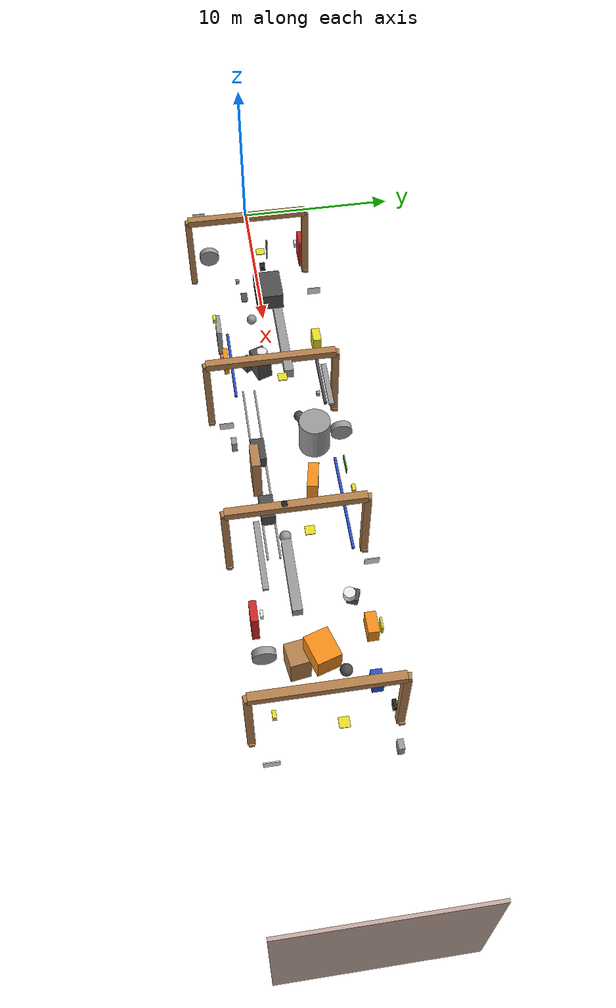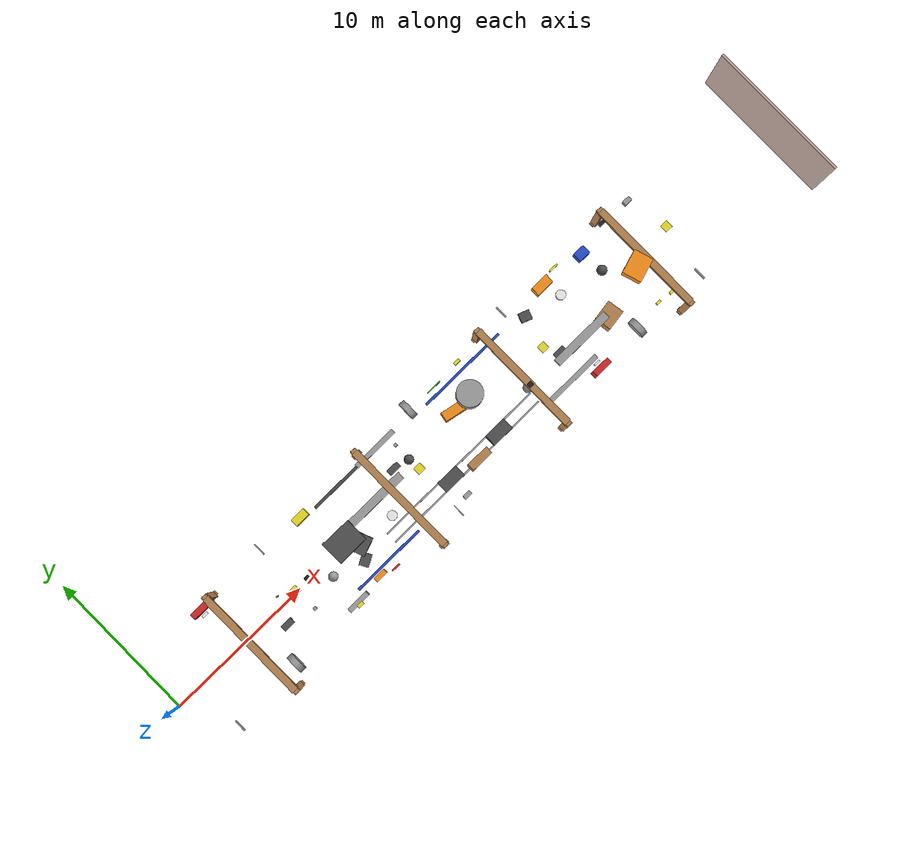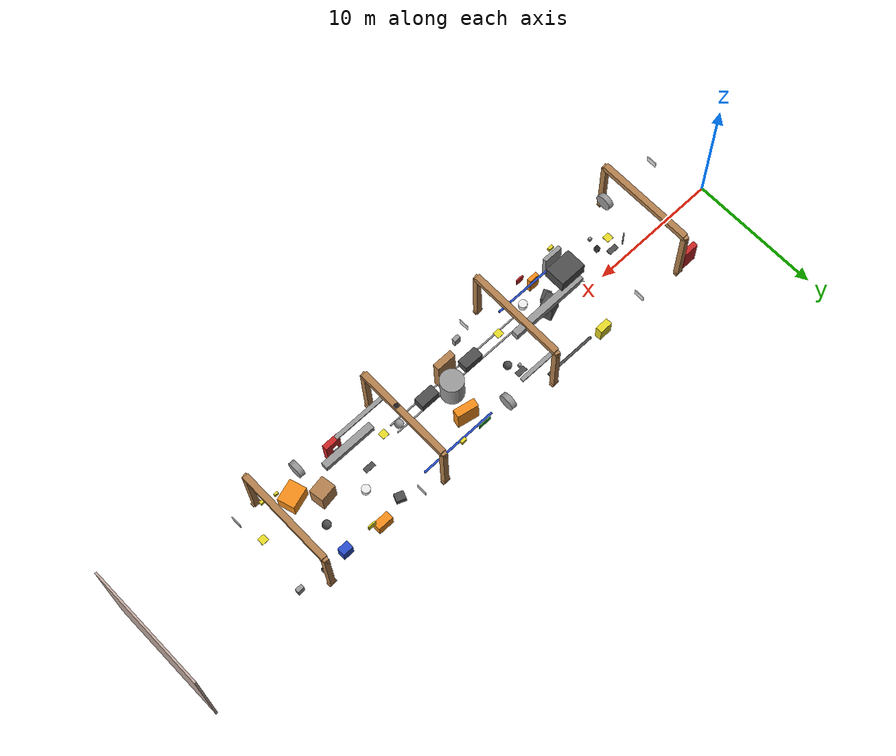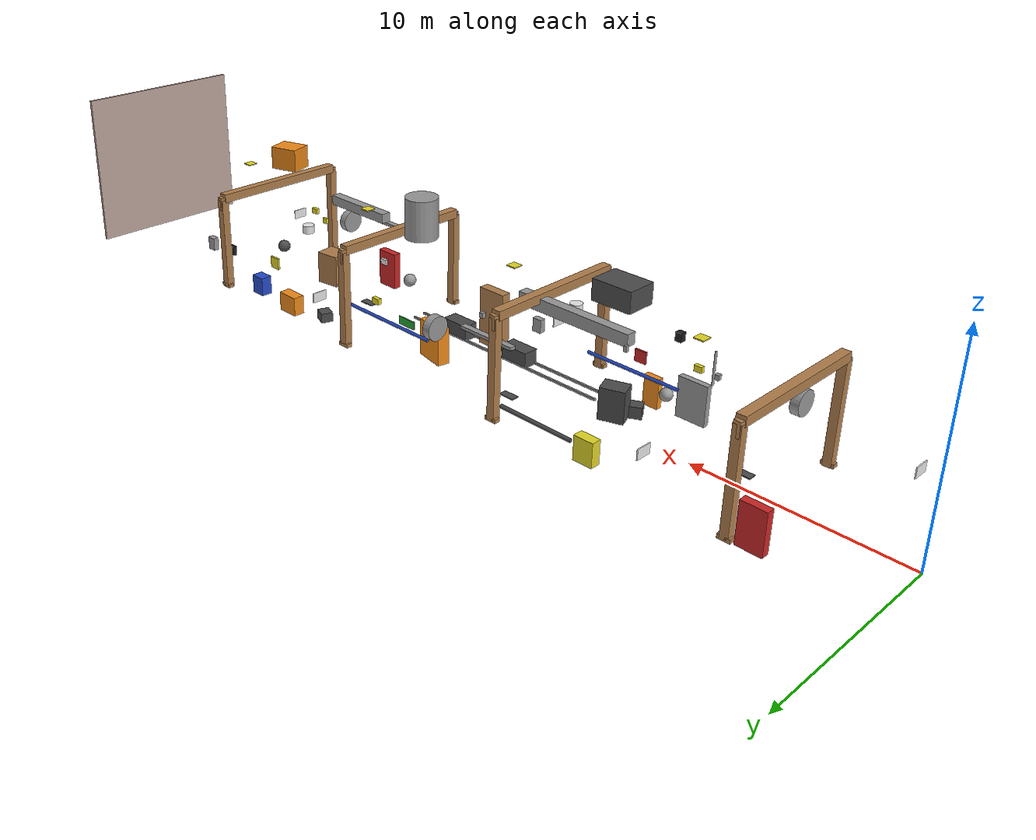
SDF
<sdf version="1.6">
 <world name="default">
  <model name="tunnel_wall">
   <pose>41.334244 0.108906 0 0 -0 0</pose>
   <link name="Wall_0">
    <collision name="Wall_0_Collision">
     <geometry><box><size>9.15 0.15 8.5</size></box></geometry>
     <pose>0 0 4.25 0 -0 0</pose>
    </collision>
    <visual name="Wall_0_Visual">
     <pose>0 0 4.25 0 -0 0</pose>
     <geometry><box><size>9.15 0.15 8.5</size></box></geometry>
     <material>
      <script><uri>file://media/materials/scripts/gazebo.material</uri><name>Gazebo/Grey</name></script>
      <ambient>0.760784 0.662745 0.627451 1</ambient>
     </material>
     <meta><layer>0</layer></meta>
    </visual>
    <pose>7.4625 0 0 0 -0 1.5708</pose>
   </link>
   <static>1</static>
  </model>
  <model name="ventilation_duct_1">
   <pose>16 0.5 4.8 0 1.57 0</pose>
   <link name="link">
    <collision name="collision"><geometry><box><size>0.6 0.5 6.0</size></box></geometry></collision>
    <visual name="visual">
     <geometry><box><size>0.6 0.5 6.0</size></box></geometry>
     <material>
      <script><uri>file://media/materials/scripts/gazebo.material</uri><name>Gazebo/Grey</name></script>
     </material>
    </visual>
   </link>
   <static>1</static>
  </model>
  <model name="ventilation_duct_2">
   <pose>32 -1.2 5.0 0 1.57 0</pose>
   <link name="link">
    <collision name="collision"><geometry><box><size>0.5 0.5 4.0</size></box></geometry></collision>
    <visual name="visual">
     <geometry><box><size>0.5 0.5 4.0</size></box></geometry>
     <material>
      <script><uri>file://media/materials/scripts/gazebo.material</uri><name>Gazebo/Grey</name></script>
     </material>
    </visual>
   </link>
   <static>1</static>
  </model>
  <model name="light_box_1">
   <pose>12 -3.2 2.5 0 0 0</pose>
   <link name="link">
    <collision name="collision"><geometry><box><size>0.4 0.2 0.3</size></box></geometry></collision>
    <visual name="visual">
     <geometry><box><size>0.4 0.2 0.3</size></box></geometry>
     <material>
      <script><uri>file://media/materials/scripts/gazebo.material</uri><name>Gazebo/Yellow</name></script>
     </material>
    </visual>
   </link>
   <static>1</static>
  </model>
  <model name="light_box_2">
   <pose>26 3.0 3.0 0 0 0</pose>
   <link name="link">
    <collision name="collision"><geometry><box><size>0.4 0.2 0.3</size></box></geometry></collision>
    <visual name="visual">
     <geometry><box><size>0.4 0.2 0.3</size></box></geometry>
     <material>
      <script><uri>file://media/materials/scripts/gazebo.material</uri><name>Gazebo/Yellow</name></script>
     </material>
    </visual>
   </link>
   <static>1</static>
  </model>
  <model name="light_box_3">
   <pose>38 -2.9 2.8 0 0 0</pose>
   <link name="link">
    <collision name="collision"><geometry><box><size>0.4 0.2 0.3</size></box></geometry></collision>
    <visual name="visual">
     <geometry><box><size>0.4 0.2 0.3</size></box></geometry>
     <material>
      <script><uri>file://media/materials/scripts/gazebo.material</uri><name>Gazebo/Yellow</name></script>
     </material>
    </visual>
   </link>
   <static>1</static>
  </model>
  <model name="cable_tray_1">
   <pose>19 2.7 3.5 0 0 0</pose>
   <link name="link">
    <collision name="collision"><geometry><box><size>3.0 0.3 0.15</size></box></geometry></collision>
    <visual name="visual">
     <geometry><box><size>3.0 0.3 0.15</size></box></geometry>
     <material>
      <script><uri>file://media/materials/scripts/gazebo.material</uri><name>Gazebo/Grey</name></script>
     </material>
    </visual>
   </link>
   <static>1</static>
  </model>
  <model name="cable_tray_2">
   <pose>30 -2.5 4.0 0 0 0</pose>
   <link name="link">
    <collision name="collision"><geometry><box><size>4.0 0.3 0.15</size></box></geometry></collision>
    <visual name="visual">
     <geometry><box><size>4.0 0.3 0.15</size></box></geometry>
     <material>
      <script><uri>file://media/materials/scripts/gazebo.material</uri><name>Gazebo/Grey</name></script>
     </material>
    </visual>
   </link>
   <static>1</static>
  </model>
  <model name="roof_structure_1">
   <pose>14 0 6.5 0 0 0</pose>
   <link name="link">
    <collision name="collision"><geometry><box><size>2.0 1.5 1.0</size></box></geometry></collision>
    <visual name="visual">
     <geometry><box><size>2.0 1.5 1.0</size></box></geometry>
     <material>
      <script><uri>file://media/materials/scripts/gazebo.material</uri><name>Gazebo/DarkGrey</name></script>
     </material>
    </visual>
   </link>
   <static>1</static>
  </model>
  <model name="roof_ventilation_shaft">
   <pose>25 1.0 7.0 0 0 0</pose>
   <link name="link">
    <collision name="collision">
     <geometry><cylinder><radius>0.8</radius><length>2.0</length></cylinder></geometry>
    </collision>
    <visual name="visual">
     <geometry><cylinder><radius>0.8</radius><length>2.0</length></cylinder></geometry>
     <material>
      <script><uri>file://media/materials/scripts/gazebo.material</uri><name>Gazebo/Grey</name></script>
     </material>
    </visual>
   </link>
   <static>1</static>
  </model>
  <model name="roof_equipment_box">
   <pose>37 -0.5 6.8 0 0 0.3</pose>
   <link name="link">
    <collision name="collision"><geometry><box><size>1.5 1.2 1.2</size></box></geometry></collision>
    <visual name="visual">
     <geometry><box><size>1.5 1.2 1.2</size></box></geometry>
     <material>
      <script><uri>file://media/materials/scripts/gazebo.material</uri><name>Gazebo/Orange</name></script>
     </material>
    </visual>
   </link>
   <static>1</static>
  </model>
  <model name="hanging_chain_1">
   <pose>9 0.5 5.0 0 0 0</pose>
   <link name="link">
    <collision name="collision">
     <geometry><cylinder><radius>0.05</radius><length>1.5</length></cylinder></geometry>
    </collision>
    <visual name="visual">
     <geometry><cylinder><radius>0.05</radius><length>1.5</length></cylinder></geometry>
     <material>
      <script><uri>file://media/materials/scripts/gazebo.material</uri><name>Gazebo/Grey</name></script>
     </material>
    </visual>
   </link>
   <static>1</static>
  </model>
  <model name="hanging_light_1">
   <pose>17 -0.8 4.5 0 0 0</pose>
   <link name="link">
    <collision name="collision">
     <geometry><cylinder><radius>0.3</radius><length>0.4</length></cylinder></geometry>
    </collision>
    <visual name="visual">
     <geometry><cylinder><radius>0.3</radius><length>0.4</length></cylinder></geometry>
     <material>
      <script><uri>file://media/materials/scripts/gazebo.material</uri><name>Gazebo/White</name></script>
     </material>
    </visual>
   </link>
   <static>1</static>
  </model>
  <model name="hanging_light_2">
   <pose>33 1.5 4.3 0 0 0</pose>
   <link name="link">
    <collision name="collision">
     <geometry><cylinder><radius>0.3</radius><length>0.4</length></cylinder></geometry>
    </collision>
    <visual name="visual">
     <geometry><cylinder><radius>0.3</radius><length>0.4</length></cylinder></geometry>
     <material>
      <script><uri>file://media/materials/scripts/gazebo.material</uri><name>Gazebo/White</name></script>
     </material>
    </visual>
   </link>
   <static>1</static>
  </model>
  <model name="warning_sign_1">
   <pose>15 -3.1 2.0 0 0 0</pose>
   <link name="link">
    <collision name="collision"><geometry><box><size>0.6 0.1 0.6</size></box></geometry></collision>
    <visual name="visual">
     <geometry><box><size>0.6 0.1 0.6</size></box></geometry>
     <material>
      <script><uri>file://media/materials/scripts/gazebo.material</uri><name>Gazebo/Red</name></script>
     </material>
    </visual>
   </link>
   <static>1</static>
  </model>
  <model name="warning_sign_2">
   <pose>34 3.0 2.5 0 0 0</pose>
   <link name="link">
    <collision name="collision"><geometry><box><size>0.6 0.1 0.6</size></box></geometry></collision>
    <visual name="visual">
     <geometry><box><size>0.6 0.1 0.6</size></box></geometry>
     <material>
      <script><uri>file://media/materials/scripts/gazebo.material</uri><name>Gazebo/Yellow</name></script>
     </material>
    </visual>
   </link>
   <static>1</static>
  </model>
  <model name="electrical_box_1">
   <pose>21 -3.0 1.5 0 0 0</pose>
   <link name="link">
    <collision name="collision"><geometry><box><size>0.5 0.3 0.7</size></box></geometry></collision>
    <visual name="visual">
     <geometry><box><size>0.5 0.3 0.7</size></box></geometry>
     <material>
      <script><uri>file://media/materials/scripts/gazebo.material</uri><name>Gazebo/Grey</name></script>
     </material>
    </visual>
   </link>
   <static>1</static>
  </model>
  <model name="electrical_box_2">
   <pose>40 2.8 1.8 0 0 0</pose>
   <link name="link">
    <collision name="collision"><geometry><box><size>0.5 0.3 0.7</size></box></geometry></collision>
    <visual name="visual">
     <geometry><box><size>0.5 0.3 0.7</size></box></geometry>
     <material>
      <script><uri>file://media/materials/scripts/gazebo.material</uri><name>Gazebo/Grey</name></script>
     </material>
    </visual>
   </link>
   <static>1</static>
  </model>
  <model name="rock_debris_1">
   <pose>14 -1.5 0.3 0 0 0.5</pose>
   <link name="link">
    <collision name="collision"><geometry><box><size>0.8 0.6 0.6</size></box></geometry></collision>
    <visual name="visual">
     <geometry><box><size>0.8 0.6 0.6</size></box></geometry>
     <material>
      <script><uri>file://media/materials/scripts/gazebo.material</uri><name>Gazebo/DarkGrey</name></script>
     </material>
    </visual>
   </link>
   <static>1</static>
  </model>
  <model name="rock_debris_2">
   <pose>31 2.2 0.25 0 0 1.2</pose>
   <link name="link">
    <collision name="collision"><geometry><box><size>0.6 0.7 0.5</size></box></geometry></collision>
    <visual name="visual">
     <geometry><box><size>0.6 0.7 0.5</size></box></geometry>
     <material>
      <script><uri>file://media/materials/scripts/gazebo.material</uri><name>Gazebo/DarkGrey</name></script>
     </material>
    </visual>
   </link>
   <static>1</static>
  </model>
  <model name="narrow_passage_1">
   <pose>23 -2.0 1.5 0 0 0</pose>
   <link name="link">
    <collision name="collision"><geometry><box><size>1.5 0.5 3.0</size></box></geometry></collision>
    <visual name="visual">
     <geometry><box><size>1.5 0.5 3.0</size></box></geometry>
     <material>
      <script><uri>file://media/materials/scripts/gazebo.material</uri><name>Gazebo/Wood</name></script>
     </material>
    </visual>
   </link>
   <static>1</static>
  </model>
  <model name="sensor_mount_1">
   <pose>11 0 5.5 0 0 0</pose>
   <link name="link">
    <collision name="collision"><geometry><box><size>0.3 0.3 0.4</size></box></geometry></collision>
    <visual name="visual">
     <geometry><box><size>0.3 0.3 0.4</size></box></geometry>
     <material>
      <script><uri>file://media/materials/scripts/gazebo.material</uri><name>Gazebo/Black</name></script>
     </material>
    </visual>
   </link>
   <static>1</static>
  </model>
  <model name="sensor_mount_2">
   <pose>28 -1.0 5.2 0 0 0</pose>
   <link name="link">
    <collision name="collision"><geometry><box><size>0.3 0.3 0.4</size></box></geometry></collision>
    <visual name="visual">
     <geometry><box><size>0.3 0.3 0.4</size></box></geometry>
     <material>
      <script><uri>file://media/materials/scripts/gazebo.material</uri><name>Gazebo/Black</name></script>
     </material>
    </visual>
   </link>
   <static>1</static>
  </model>
  <model name="distance_marker_0">
   <pose>2 -3.3 2.0 0 0 1.57</pose>
   <link name="link">
    <collision name="collision"><geometry><box><size>0.8 0.05 0.5</size></box></geometry></collision>
    <visual name="visual">
     <geometry><box><size>0.8 0.05 0.5</size></box></geometry>
     <material>
      <script><uri>file://media/materials/scripts/gazebo.material</uri><name>Gazebo/White</name></script>
     </material>
    </visual>
   </link>
   <static>1</static>
  </model>
  <model name="emergency_station_1">
   <pose>5 3.2 0 0 0 0</pose>
   <link name="link">
    <collision name="collision">
     <geometry><box><size>1.2 0.4 2.0</size></box></geometry>
     <pose>0 0 1.0 0 0 0</pose>
    </collision>
    <visual name="visual">
     <pose>0 0 1.0 0 0 0</pose>
     <geometry><box><size>1.2 0.4 2.0</size></box></geometry>
     <material>
      <script><uri>file://media/materials/scripts/gazebo.material</uri><name>Gazebo/Red</name></script>
     </material>
    </visual>
   </link>
   <static>1</static>
  </model>
  <model name="first_aid_kit_1">
   <pose>5 2.8 1.5 0 0 0</pose>
   <link name="link">
    <collision name="collision"><geometry><box><size>0.4 0.15 0.3</size></box></geometry></collision>
    <visual name="visual">
     <geometry><box><size>0.4 0.15 0.3</size></box></geometry>
     <material>
      <script><uri>file://media/materials/scripts/gazebo.material</uri><name>Gazebo/White</name></script>
     </material>
    </visual>
   </link>
   <static>1</static>
  </model>
  <model name="ventilation_fan_1">
   <pose>7 -3.0 3.0 0 1.57 0</pose>
   <link name="link">
    <collision name="collision">
     <geometry><cylinder><radius>0.6</radius><length>0.4</length></cylinder></geometry>
    </collision>
    <visual name="visual">
     <geometry><cylinder><radius>0.6</radius><length>0.4</length></cylinder></geometry>
     <material>
      <script><uri>file://media/materials/scripts/gazebo.material</uri><name>Gazebo/Grey</name></script>
     </material>
    </visual>
   </link>
   <static>1</static>
  </model>
  <model name="distance_marker_10">
   <pose>10 3.3 2.0 0 0 -1.57</pose>
   <link name="link">
    <collision name="collision"><geometry><box><size>0.8 0.05 0.5</size></box></geometry></collision>
    <visual name="visual">
     <geometry><box><size>0.8 0.05 0.5</size></box></geometry>
     <material>
      <script><uri>file://media/materials/scripts/gazebo.material</uri><name>Gazebo/White</name></script>
     </material>
    </visual>
   </link>
   <static>1</static>
  </model>
  <model name="tool_rack_1">
   <pose>12 -3.0 0 0 0 0</pose>
   <link name="link">
    <collision name="collision">
     <geometry><box><size>1.5 0.3 2.0</size></box></geometry>
     <pose>0 0 1.0 0 0 0</pose>
    </collision>
    <visual name="visual">
     <pose>0 0 1.0 0 0 0</pose>
     <geometry><box><size>1.5 0.3 2.0</size></box></geometry>
     <material>
      <script><uri>file://media/materials/scripts/gazebo.material</uri><name>Gazebo/Grey</name></script>
     </material>
    </visual>
   </link>
   <static>1</static>
  </model>
  <model name="battery_charging_station">
   <pose>13 3.0 0 0 0 0</pose>
   <link name="link">
    <collision name="collision">
     <geometry><box><size>1.0 0.5 1.2</size></box></geometry>
     <pose>0 0 0.6 0 0 0</pose>
    </collision>
    <visual name="visual">
     <pose>0 0 0.6 0 0 0</pose>
     <geometry><box><size>1.0 0.5 1.2</size></box></geometry>
     <material>
      <script><uri>file://media/materials/scripts/gazebo.material</uri><name>Gazebo/Yellow</name></script>
     </material>
    </visual>
   </link>
   <static>1</static>
  </model>
  <model name="ppe_rack">
   <pose>14 -2.8 0 0 0 0</pose>
   <link name="link">
    <collision name="collision">
     <geometry><box><size>0.8 0.3 1.5</size></box></geometry>
     <pose>0 0 0.75 0 0 0</pose>
    </collision>
    <visual name="visual">
     <pose>0 0 0.75 0 0 0</pose>
     <geometry><box><size>0.8 0.3 1.5</size></box></geometry>
     <material>
      <script><uri>file://media/materials/scripts/gazebo.material</uri><name>Gazebo/Orange</name></script>
     </material>
    </visual>
   </link>
   <static>1</static>
  </model>
  <model name="compressed_air_line_1">
   <pose>15 -2.5 1.5 0 1.57 0</pose>
   <link name="link">
    <collision name="collision">
     <geometry><cylinder><radius>0.08</radius><length>5.0</length></cylinder></geometry>
    </collision>
    <visual name="visual">
     <geometry><cylinder><radius>0.08</radius><length>5.0</length></cylinder></geometry>
     <material>
      <script><uri>file://media/materials/scripts/gazebo.material</uri><name>Gazebo/Blue</name></script>
     </material>
    </visual>
   </link>
   <static>1</static>
  </model>
  <model name="water_pipe_1">
   <pose>16 2.8 0.5 0 1.57 0</pose>
   <link name="link">
    <collision name="collision">
     <geometry><cylinder><radius>0.1</radius><length>4.0</length></cylinder></geometry>
    </collision>
    <visual name="visual">
     <geometry><cylinder><radius>0.1</radius><length>4.0</length></cylinder></geometry>
     <material>
      <script><uri>file://media/materials/scripts/gazebo.material</uri><name>Gazebo/DarkGrey</name></script>
     </material>
    </visual>
   </link>
   <static>1</static>
  </model>
  <model name="distance_marker_20">
   <pose>20 -3.3 2.0 0 0 1.57</pose>
   <link name="link">
    <collision name="collision"><geometry><box><size>0.8 0.05 0.5</size></box></geometry></collision>
    <visual name="visual">
     <geometry><box><size>0.8 0.05 0.5</size></box></geometry>
     <material>
      <script><uri>file://media/materials/scripts/gazebo.material</uri><name>Gazebo/White</name></script>
     </material>
    </visual>
   </link>
   <static>1</static>
  </model>
  <model name="rail_track_left">
   <pose>22 -2.0 0.05 0 0 0</pose>
   <link name="link">
    <collision name="collision"><geometry><box><size>12.0 0.1 0.1</size></box></geometry></collision>
    <visual name="visual">
     <geometry><box><size>12.0 0.1 0.1</size></box></geometry>
     <material>
      <script><uri>file://media/materials/scripts/gazebo.material</uri><name>Gazebo/Grey</name></script>
     </material>
    </visual>
   </link>
   <static>1</static>
  </model>
  <model name="rail_track_right">
   <pose>22 -1.3 0.05 0 0 0</pose>
   <link name="link">
    <collision name="collision"><geometry><box><size>12.0 0.1 0.1</size></box></geometry></collision>
    <visual name="visual">
     <geometry><box><size>12.0 0.1 0.1</size></box></geometry>
     <material>
      <script><uri>file://media/materials/scripts/gazebo.material</uri><name>Gazebo/Grey</name></script>
     </material>
    </visual>
   </link>
   <static>1</static>
  </model>
  <model name="ore_cart_on_rails_1">
   <pose>21 -1.65 0.4 0 0 0</pose>
   <link name="link">
    <collision name="collision"><geometry><box><size>1.5 0.8 0.8</size></box></geometry></collision>
    <visual name="visual">
     <geometry><box><size>1.5 0.8 0.8</size></box></geometry>
     <material>
      <script><uri>file://media/materials/scripts/gazebo.material</uri><name>Gazebo/DarkGrey</name></script>
     </material>
    </visual>
   </link>
   <static>1</static>
  </model>
  <model name="ore_cart_on_rails_2">
   <pose>25 -1.65 0.4 0 0 0</pose>
   <link name="link">
    <collision name="collision"><geometry><box><size>1.5 0.8 0.8</size></box></geometry></collision>
    <visual name="visual">
     <geometry><box><size>1.5 0.8 0.8</size></box></geometry>
     <material>
      <script><uri>file://media/materials/scripts/gazebo.material</uri><name>Gazebo/DarkGrey</name></script>
     </material>
    </visual>
   </link>
   <static>1</static>
  </model>
  <model name="ventilation_fan_2">
   <pose>22 3.0 3.0 0 1.57 0</pose>
   <link name="link">
    <collision name="collision">
     <geometry><cylinder><radius>0.6</radius><length>0.4</length></cylinder></geometry>
    </collision>
    <visual name="visual">
     <geometry><cylinder><radius>0.6</radius><length>0.4</length></cylinder></geometry>
     <material>
      <script><uri>file://media/materials/scripts/gazebo.material</uri><name>Gazebo/Grey</name></script>
     </material>
    </visual>
   </link>
   <static>1</static>
  </model>
  <model name="direction_arrow_1">
   <pose>24 2.9 2.5 0 0 0</pose>
   <link name="link">
    <collision name="collision"><geometry><box><size>1.0 0.05 0.4</size></box></geometry></collision>
    <visual name="visual">
     <geometry><box><size>1.0 0.05 0.4</size></box></geometry>
     <material>
      <script><uri>file://media/materials/scripts/gazebo.material</uri><name>Gazebo/Green</name></script>
     </material>
    </visual>
   </link>
   <static>1</static>
  </model>
  <model name="compressed_air_line_2">
   <pose>26 2.5 1.8 0 1.57 0</pose>
   <link name="link">
    <collision name="collision">
     <geometry><cylinder><radius>0.08</radius><length>6.0</length></cylinder></geometry>
    </collision>
    <visual name="visual">
     <geometry><cylinder><radius>0.08</radius><length>6.0</length></cylinder></geometry>
     <material>
      <script><uri>file://media/materials/scripts/gazebo.material</uri><name>Gazebo/Blue</name></script>
     </material>
    </visual>
   </link>
   <static>1</static>
  </model>
  <model name="distance_marker_30">
   <pose>30 3.3 2.0 0 0 -1.57</pose>
   <link name="link">
    <collision name="collision"><geometry><box><size>0.8 0.05 0.5</size></box></geometry></collision>
    <visual name="visual">
     <geometry><box><size>0.8 0.05 0.5</size></box></geometry>
     <material>
      <script><uri>file://media/materials/scripts/gazebo.material</uri><name>Gazebo/White</name></script>
     </material>
    </visual>
   </link>
   <static>1</static>
  </model>
  <model name="emergency_station_2">
   <pose>32 -3.2 0 0 0 0</pose>
   <link name="link">
    <collision name="collision">
     <geometry><box><size>1.2 0.4 2.0</size></box></geometry>
     <pose>0 0 1.0 0 0 0</pose>
    </collision>
    <visual name="visual">
     <pose>0 0 1.0 0 0 0</pose>
     <geometry><box><size>1.2 0.4 2.0</size></box></geometry>
     <material>
      <script><uri>file://media/materials/scripts/gazebo.material</uri><name>Gazebo/Red</name></script>
     </material>
    </visual>
   </link>
   <static>1</static>
  </model>
  <model name="first_aid_kit_2">
   <pose>32 -2.8 1.5 0 0 0</pose>
   <link name="link">
    <collision name="collision"><geometry><box><size>0.4 0.15 0.3</size></box></geometry></collision>
    <visual name="visual">
     <geometry><box><size>0.4 0.15 0.3</size></box></geometry>
     <material>
      <script><uri>file://media/materials/scripts/gazebo.material</uri><name>Gazebo/White</name></script>
     </material>
    </visual>
   </link>
   <static>1</static>
  </model>
  <model name="tool_station_2">
   <pose>33 2.8 0 0 0 0</pose>
   <link name="link">
    <collision name="collision">
     <geometry><box><size>1.2 0.6 1.0</size></box></geometry>
     <pose>0 0 0.5 0 0 0</pose>
    </collision>
    <visual name="visual">
     <pose>0 0 0.5 0 0 0</pose>
     <geometry><box><size>1.2 0.6 1.0</size></box></geometry>
     <material>
      <script><uri>file://media/materials/scripts/gazebo.material</uri><name>Gazebo/Orange</name></script>
     </material>
    </visual>
   </link>
   <static>1</static>
  </model>
  <model name="ventilation_fan_3">
   <pose>35 -3.0 3.0 0 1.57 0</pose>
   <link name="link">
    <collision name="collision">
     <geometry><cylinder><radius>0.6</radius><length>0.4</length></cylinder></geometry>
    </collision>
    <visual name="visual">
     <geometry><cylinder><radius>0.6</radius><length>0.4</length></cylinder></geometry>
     <material>
      <script><uri>file://media/materials/scripts/gazebo.material</uri><name>Gazebo/Grey</name></script>
     </material>
    </visual>
   </link>
   <static>1</static>
  </model>
  <model name="water_pump_station">
   <pose>36 2.5 0 0 0 0</pose>
   <link name="link">
    <collision name="collision">
     <geometry><box><size>0.8 0.6 1.0</size></box></geometry>
     <pose>0 0 0.5 0 0 0</pose>
    </collision>
    <visual name="visual">
     <pose>0 0 0.5 0 0 0</pose>
     <geometry><box><size>0.8 0.6 1.0</size></box></geometry>
     <material>
      <script><uri>file://media/materials/scripts/gazebo.material</uri><name>Gazebo/Blue</name></script>
     </material>
    </visual>
   </link>
   <static>1</static>
  </model>
  <model name="methane_detector_1">
   <pose>37 -2.8 2.5 0 0 0</pose>
   <link name="link">
    <collision name="collision"><geometry><box><size>0.3 0.15 0.3</size></box></geometry></collision>
    <visual name="visual">
     <geometry><box><size>0.3 0.15 0.3</size></box></geometry>
     <material>
      <script><uri>file://media/materials/scripts/gazebo.material</uri><name>Gazebo/Yellow</name></script>
     </material>
    </visual>
   </link>
   <static>1</static>
  </model>
  <model name="communication_box">
   <pose>38 2.9 2.0 0 0 0</pose>
   <link name="link">
    <collision name="collision"><geometry><box><size>0.4 0.2 0.5</size></box></geometry></collision>
    <visual name="visual">
     <geometry><box><size>0.4 0.2 0.5</size></box></geometry>
     <material>
      <script><uri>file://media/materials/scripts/gazebo.material</uri><name>Gazebo/Black</name></script>
     </material>
    </visual>
   </link>
   <static>1</static>
  </model>
  <model name="distance_marker_40">
   <pose>40 -3.3 2.0 0 0 1.57</pose>
   <link name="link">
    <collision name="collision"><geometry><box><size>0.8 0.05 0.5</size></box></geometry></collision>
    <visual name="visual">
     <geometry><box><size>0.8 0.05 0.5</size></box></geometry>
     <material>
      <script><uri>file://media/materials/scripts/gazebo.material</uri><name>Gazebo/White</name></script>
     </material>
    </visual>
   </link>
   <static>1</static>
  </model>
  <model name="reflective_marker_1">
   <pose>10 0 5.8 0 0 0</pose>
   <link name="link">
    <collision name="collision"><geometry><box><size>0.5 0.5 0.05</size></box></geometry></collision>
    <visual name="visual">
     <geometry><box><size>0.5 0.5 0.05</size></box></geometry>
     <material>
      <script><uri>file://media/materials/scripts/gazebo.material</uri><name>Gazebo/Yellow</name></script>
     </material>
    </visual>
   </link>
   <static>1</static>
  </model>
  <model name="reflective_marker_2">
   <pose>20 0 5.8 0 0 0</pose>
   <link name="link">
    <collision name="collision"><geometry><box><size>0.5 0.5 0.05</size></box></geometry></collision>
    <visual name="visual">
     <geometry><box><size>0.5 0.5 0.05</size></box></geometry>
     <material>
      <script><uri>file://media/materials/scripts/gazebo.material</uri><name>Gazebo/Yellow</name></script>
     </material>
    </visual>
   </link>
   <static>1</static>
  </model>
  <model name="reflective_marker_3">
   <pose>30 0 5.8 0 0 0</pose>
   <link name="link">
    <collision name="collision"><geometry><box><size>0.5 0.5 0.05</size></box></geometry></collision>
    <visual name="visual">
     <geometry><box><size>0.5 0.5 0.05</size></box></geometry>
     <material>
      <script><uri>file://media/materials/scripts/gazebo.material</uri><name>Gazebo/Yellow</name></script>
     </material>
    </visual>
   </link>
   <static>1</static>
  </model>
  <model name="reflective_marker_4">
   <pose>40 0 5.8 0 0 0</pose>
   <link name="link">
    <collision name="collision"><geometry><box><size>0.5 0.5 0.05</size></box></geometry></collision>
    <visual name="visual">
     <geometry><box><size>0.5 0.5 0.05</size></box></geometry>
     <material>
      <script><uri>file://media/materials/scripts/gazebo.material</uri><name>Gazebo/Yellow</name></script>
     </material>
    </visual>
   </link>
   <static>1</static>
  </model>
  <model name="support_arch_1">
   <pose>6 0 0 0 0 0</pose>
   <link name="left_pillar">
    <pose>0 -4.1 2.5 0 0 0</pose>
    <collision name="collision"><geometry><box><size>0.4 0.4 5.0</size></box></geometry></collision>
    <visual name="visual">
     <geometry><box><size>0.4 0.4 5.0</size></box></geometry>
     <material>
      <script><uri>file://media/materials/scripts/gazebo.material</uri><name>Gazebo/Wood</name></script>
      <ambient>0.6 0.45 0.25 1</ambient>
     </material>
    </visual>
   </link>
   <link name="right_pillar">
    <pose>0 3.3 2.5 0 0 0</pose>
    <collision name="collision"><geometry><box><size>0.4 0.4 5.0</size></box></geometry></collision>
    <visual name="visual">
     <geometry><box><size>0.4 0.4 5.0</size></box></geometry>
     <material>
      <script><uri>file://media/materials/scripts/gazebo.material</uri><name>Gazebo/Wood</name></script>
      <ambient>0.6 0.45 0.25 1</ambient>
     </material>
    </visual>
   </link>
   <link name="top_beam">
    <pose>0 -0.4 5.1 0 0 0</pose>
    <collision name="collision"><geometry><box><size>0.45 7.4 0.45</size></box></geometry></collision>
    <visual name="visual">
     <geometry><box><size>0.45 7.4 0.45</size></box></geometry>
     <material>
      <script><uri>file://media/materials/scripts/gazebo.material</uri><name>Gazebo/Wood</name></script>
      <ambient>0.55 0.4 0.22 1</ambient>
     </material>
    </visual>
   </link>
   <link name="left_base">
    <pose>0 -4.1 0.1 0 0 0</pose>
    <collision name="collision"><geometry><box><size>0.6 0.3 0.2</size></box></geometry></collision>
    <visual name="visual">
     <geometry><box><size>0.6 0.3 0.2</size></box></geometry>
     <material>
      <script><uri>file://media/materials/scripts/gazebo.material</uri><name>Gazebo/Wood</name></script>
      <ambient>0.5 0.35 0.2 1</ambient>
     </material>
    </visual>
   </link>
   <link name="right_base">
    <pose>0 3.35 0.1 0 0 0</pose>
    <collision name="collision"><geometry><box><size>0.6 0.3 0.2</size></box></geometry></collision>
    <visual name="visual">
     <geometry><box><size>0.6 0.3 0.2</size></box></geometry>
     <material>
      <script><uri>file://media/materials/scripts/gazebo.material</uri><name>Gazebo/Wood</name></script>
      <ambient>0.5 0.35 0.2 1</ambient>
     </material>
    </visual>
   </link>
   <link name="left_brace">
    <pose>0 -4.14 4.8 0 0 0.2</pose>
    <collision name="collision"><geometry><box><size>0.35 0.25 0.7</size></box></geometry></collision>
    <visual name="visual">
     <geometry><box><size>0.35 0.25 0.7</size></box></geometry>
     <material>
      <script><uri>file://media/materials/scripts/gazebo.material</uri><name>Gazebo/Wood</name></script>
      <ambient>0.55 0.4 0.22 1</ambient>
     </material>
    </visual>
   </link>
   <link name="right_brace">
    <pose>0 3.375 4.8 0 0 -0.2</pose>
    <collision name="collision"><geometry><box><size>0.35 0.25 0.7</size></box></geometry></collision>
    <visual name="visual">
     <geometry><box><size>0.35 0.25 0.7</size></box></geometry>
     <material>
      <script><uri>file://media/materials/scripts/gazebo.material</uri><name>Gazebo/Wood</name></script>
      <ambient>0.55 0.4 0.22 1</ambient>
     </material>
    </visual>
   </link>
   <static>1</static>
  </model>
  <model name="support_arch_2">
   <pose>18 0 0 0 0 0</pose>
   <link name="left_pillar">
    <pose>0 -4.1 2.5 0 0 0</pose>
    <collision name="collision"><geometry><box><size>0.4 0.4 5.0</size></box></geometry></collision>
    <visual name="visual">
     <geometry><box><size>0.4 0.4 5.0</size></box></geometry>
     <material>
      <script><uri>file://media/materials/scripts/gazebo.material</uri><name>Gazebo/Wood</name></script>
      <ambient>0.6 0.45 0.25 1</ambient>
     </material>
    </visual>
   </link>
   <link name="right_pillar">
    <pose>0 3.3 2.5 0 0 0</pose>
    <collision name="collision"><geometry><box><size>0.4 0.4 5.0</size></box></geometry></collision>
    <visual name="visual">
     <geometry><box><size>0.4 0.4 5.0</size></box></geometry>
     <material>
      <script><uri>file://media/materials/scripts/gazebo.material</uri><name>Gazebo/Wood</name></script>
      <ambient>0.6 0.45 0.25 1</ambient>
     </material>
    </visual>
   </link>
   <link name="top_beam">
    <pose>0 -0.4 5.1 0 0 0</pose>
    <collision name="collision"><geometry><box><size>0.45 7.4 0.45</size></box></geometry></collision>
    <visual name="visual">
     <geometry><box><size>0.45 7.4 0.45</size></box></geometry>
     <material>
      <script><uri>file://media/materials/scripts/gazebo.material</uri><name>Gazebo/Wood</name></script>
      <ambient>0.55 0.4 0.22 1</ambient>
     </material>
    </visual>
   </link>
   <link name="left_base">
    <pose>0 -4.1 0.1 0 0 0</pose>
    <collision name="collision"><geometry><box><size>0.6 0.3 0.2</size></box></geometry></collision>
    <visual name="visual">
     <geometry><box><size>0.6 0.3 0.2</size></box></geometry>
     <material>
      <script><uri>file://media/materials/scripts/gazebo.material</uri><name>Gazebo/Wood</name></script>
      <ambient>0.5 0.35 0.2 1</ambient>
     </material>
    </visual>
   </link>
   <link name="right_base">
    <pose>0 3.35 0.1 0 0 0</pose>
    <collision name="collision"><geometry><box><size>0.6 0.3 0.2</size></box></geometry></collision>
    <visual name="visual">
     <geometry><box><size>0.6 0.3 0.2</size></box></geometry>
     <material>
      <script><uri>file://media/materials/scripts/gazebo.material</uri><name>Gazebo/Wood</name></script>
      <ambient>0.5 0.35 0.2 1</ambient>
     </material>
    </visual>
   </link>
   <link name="left_brace">
    <pose>0 -4.14 4.8 0 0 0.2</pose>
    <collision name="collision"><geometry><box><size>0.35 0.25 0.7</size></box></geometry></collision>
    <visual name="visual">
     <geometry><box><size>0.35 0.25 0.7</size></box></geometry>
     <material>
      <script><uri>file://media/materials/scripts/gazebo.material</uri><name>Gazebo/Wood</name></script>
      <ambient>0.55 0.4 0.22 1</ambient>
     </material>
    </visual>
   </link>
   <link name="right_brace">
    <pose>0 3.375 4.8 0 0 -0.2</pose>
    <collision name="collision"><geometry><box><size>0.35 0.25 0.7</size></box></geometry></collision>
    <visual name="visual">
     <geometry><box><size>0.35 0.25 0.7</size></box></geometry>
     <material>
      <script><uri>file://media/materials/scripts/gazebo.material</uri><name>Gazebo/Wood</name></script>
      <ambient>0.55 0.4 0.22 1</ambient>
     </material>
    </visual>
   </link>
   <static>1</static>
  </model>
  <model name="support_arch_3">
   <pose>28 0 0 0 0 0</pose>
   <link name="left_pillar">
    <pose>0 -4.1 2.5 0 0 0</pose>
    <collision name="collision"><geometry><box><size>0.4 0.4 5.0</size></box></geometry></collision>
    <visual name="visual">
     <geometry><box><size>0.4 0.4 5.0</size></box></geometry>
     <material>
      <script><uri>file://media/materials/scripts/gazebo.material</uri><name>Gazebo/Wood</name></script>
      <ambient>0.6 0.45 0.25 1</ambient>
     </material>
    </visual>
   </link>
   <link name="right_pillar">
    <pose>0 3.3 2.5 0 0 0</pose>
    <collision name="collision"><geometry><box><size>0.4 0.4 5.0</size></box></geometry></collision>
    <visual name="visual">
     <geometry><box><size>0.4 0.4 5.0</size></box></geometry>
     <material>
      <script><uri>file://media/materials/scripts/gazebo.material</uri><name>Gazebo/Wood</name></script>
      <ambient>0.6 0.45 0.25 1</ambient>
     </material>
    </visual>
   </link>
   <link name="top_beam">
    <pose>0 -0.4 5.1 0 0 0</pose>
    <collision name="collision"><geometry><box><size>0.45 7.4 0.45</size></box></geometry></collision>
    <visual name="visual">
     <geometry><box><size>0.45 7.4 0.45</size></box></geometry>
     <material>
      <script><uri>file://media/materials/scripts/gazebo.material</uri><name>Gazebo/Wood</name></script>
      <ambient>0.55 0.4 0.22 1</ambient>
     </material>
    </visual>
   </link>
   <link name="left_base">
    <pose>0 -4.1 0.1 0 0 0</pose>
    <collision name="collision"><geometry><box><size>0.6 0.3 0.2</size></box></geometry></collision>
    <visual name="visual">
     <geometry><box><size>0.6 0.3 0.2</size></box></geometry>
     <material>
      <script><uri>file://media/materials/scripts/gazebo.material</uri><name>Gazebo/Wood</name></script>
      <ambient>0.5 0.35 0.2 1</ambient>
     </material>
    </visual>
   </link>
   <link name="right_base">
    <pose>0 3.35 0.1 0 0 0</pose>
    <collision name="collision"><geometry><box><size>0.6 0.3 0.2</size></box></geometry></collision>
    <visual name="visual">
     <geometry><box><size>0.6 0.3 0.2</size></box></geometry>
     <material>
      <script><uri>file://media/materials/scripts/gazebo.material</uri><name>Gazebo/Wood</name></script>
      <ambient>0.5 0.35 0.2 1</ambient>
     </material>
    </visual>
   </link>
   <link name="left_brace">
    <pose>0 -4.14 4.8 0 0 0.2</pose>
    <collision name="collision"><geometry><box><size>0.35 0.25 0.7</size></box></geometry></collision>
    <visual name="visual">
     <geometry><box><size>0.35 0.25 0.7</size></box></geometry>
     <material>
      <script><uri>file://media/materials/scripts/gazebo.material</uri><name>Gazebo/Wood</name></script>
      <ambient>0.55 0.4 0.22 1</ambient>
     </material>
    </visual>
   </link>
   <link name="right_brace">
    <pose>0 3.375 4.8 0 0 -0.2</pose>
    <collision name="collision"><geometry><box><size>0.35 0.25 0.7</size></box></geometry></collision>
    <visual name="visual">
     <geometry><box><size>0.35 0.25 0.7</size></box></geometry>
     <material>
      <script><uri>file://media/materials/scripts/gazebo.material</uri><name>Gazebo/Wood</name></script>
      <ambient>0.55 0.4 0.22 1</ambient>
     </material>
    </visual>
   </link>
   <static>1</static>
  </model>
  <model name="support_arch_4">
   <pose>38 0 0 0 0 0</pose>
   <link name="left_pillar">
    <pose>0 -4.1 2.5 0 0 0</pose>
    <collision name="collision"><geometry><box><size>0.4 0.4 5.0</size></box></geometry></collision>
    <visual name="visual">
     <geometry><box><size>0.4 0.4 5.0</size></box></geometry>
     <material>
      <script><uri>file://media/materials/scripts/gazebo.material</uri><name>Gazebo/Wood</name></script>
      <ambient>0.6 0.45 0.25 1</ambient>
     </material>
    </visual>
   </link>
   <link name="right_pillar">
    <pose>0 3.3 2.5 0 0 0</pose>
    <collision name="collision"><geometry><box><size>0.4 0.4 5.0</size></box></geometry></collision>
    <visual name="visual">
     <geometry><box><size>0.4 0.4 5.0</size></box></geometry>
     <material>
      <script><uri>file://media/materials/scripts/gazebo.material</uri><name>Gazebo/Wood</name></script>
      <ambient>0.6 0.45 0.25 1</ambient>
     </material>
    </visual>
   </link>
   <link name="top_beam">
    <pose>0 -0.4 5.1 0 0 0</pose>
    <collision name="collision"><geometry><box><size>0.45 7.4 0.45</size></box></geometry></collision>
    <visual name="visual">
     <geometry><box><size>0.45 7.4 0.45</size></box></geometry>
     <material>
      <script><uri>file://media/materials/scripts/gazebo.material</uri><name>Gazebo/Wood</name></script>
      <ambient>0.55 0.4 0.22 1</ambient>
     </material>
    </visual>
   </link>
   <link name="left_base">
    <pose>0 -4.1 0.1 0 0 0</pose>
    <collision name="collision"><geometry><box><size>0.6 0.3 0.2</size></box></geometry></collision>
    <visual name="visual">
     <geometry><box><size>0.6 0.3 0.2</size></box></geometry>
     <material>
      <script><uri>file://media/materials/scripts/gazebo.material</uri><name>Gazebo/Wood</name></script>
      <ambient>0.5 0.35 0.2 1</ambient>
     </material>
    </visual>
   </link>
   <link name="right_base">
    <pose>0 3.35 0.1 0 0 0</pose>
    <collision name="collision"><geometry><box><size>0.6 0.3 0.2</size></box></geometry></collision>
    <visual name="visual">
     <geometry><box><size>0.6 0.3 0.2</size></box></geometry>
     <material>
      <script><uri>file://media/materials/scripts/gazebo.material</uri><name>Gazebo/Wood</name></script>
      <ambient>0.5 0.35 0.2 1</ambient>
     </material>
    </visual>
   </link>
   <link name="left_brace">
    <pose>0 -4.14 4.8 0 0 0.2</pose>
    <collision name="collision"><geometry><box><size>0.35 0.25 0.7</size></box></geometry></collision>
    <visual name="visual">
     <geometry><box><size>0.35 0.25 0.7</size></box></geometry>
     <material>
      <script><uri>file://media/materials/scripts/gazebo.material</uri><name>Gazebo/Wood</name></script>
      <ambient>0.55 0.4 0.22 1</ambient>
     </material>
    </visual>
   </link>
   <link name="right_brace">
    <pose>0 3.375 4.8 0 0 -0.2</pose>
    <collision name="collision"><geometry><box><size>0.35 0.25 0.7</size></box></geometry></collision>
    <visual name="visual">
     <geometry><box><size>0.35 0.25 0.7</size></box></geometry>
     <material>
      <script><uri>file://media/materials/scripts/gazebo.material</uri><name>Gazebo/Wood</name></script>
      <ambient>0.55 0.4 0.22 1</ambient>
     </material>
    </visual>
   </link>
   <static>1</static>
  </model>
  <model name="cable_bracket_1">
   <pose>13 0.8 4.5 0 0 0</pose>
   <link name="link">
    <collision name="collision"><geometry><box><size>0.15 0.15 0.3</size></box></geometry></collision>
    <visual name="visual">
     <geometry><box><size>0.15 0.15 0.3</size></box></geometry>
     <material>
      <script><uri>file://media/materials/scripts/gazebo.material</uri><name>Gazebo/Grey</name></script>
     </material>
    </visual>
   </link>
   <static>1</static>
  </model>
  <model name="pipe_bracket_1">
   <pose>10 -1.5 3.5 0 0 0</pose>
   <link name="link">
    <collision name="collision"><geometry><box><size>0.2 0.2 0.25</size></box></geometry></collision>
    <visual name="visual">
     <geometry><box><size>0.2 0.2 0.25</size></box></geometry>
     <material>
      <script><uri>file://media/materials/scripts/gazebo.material</uri><name>Gazebo/Grey</name></script>
     </material>
    </visual>
   </link>
   <static>1</static>
  </model>
  <model name="pipe_bracket_2">
   <pose>20 2.0 4.0 0 0 0</pose>
   <link name="link">
    <collision name="collision"><geometry><box><size>0.2 0.2 0.25</size></box></geometry></collision>
    <visual name="visual">
     <geometry><box><size>0.2 0.2 0.25</size></box></geometry>
     <material>
      <script><uri>file://media/materials/scripts/gazebo.material</uri><name>Gazebo/Grey</name></script>
     </material>
    </visual>
   </link>
   <static>1</static>
  </model>
  <model name="drainage_grate_1">
   <pose>8 -1.0 0.02 0 0 0</pose>
   <link name="link">
    <collision name="collision"><geometry><box><size>0.8 0.4 0.05</size></box></geometry></collision>
    <visual name="visual">
     <geometry><box><size>0.8 0.4 0.05</size></box></geometry>
     <material>
      <script><uri>file://media/materials/scripts/gazebo.material</uri><name>Gazebo/DarkGrey</name></script>
     </material>
    </visual>
   </link>
   <static>1</static>
  </model>
  <model name="drainage_grate_2">
   <pose>19 1.2 0.02 0 0 0</pose>
   <link name="link">
    <collision name="collision"><geometry><box><size>0.8 0.4 0.05</size></box></geometry></collision>
    <visual name="visual">
     <geometry><box><size>0.8 0.4 0.05</size></box></geometry>
     <material>
      <script><uri>file://media/materials/scripts/gazebo.material</uri><name>Gazebo/DarkGrey</name></script>
     </material>
    </visual>
   </link>
   <static>1</static>
  </model>
  <model name="drainage_grate_3">
   <pose>31 -0.8 0.02 0 0 0</pose>
   <link name="link">
    <collision name="collision"><geometry><box><size>0.8 0.4 0.05</size></box></geometry></collision>
    <visual name="visual">
     <geometry><box><size>0.8 0.4 0.05</size></box></geometry>
     <material>
      <script><uri>file://media/materials/scripts/gazebo.material</uri><name>Gazebo/DarkGrey</name></script>
     </material>
    </visual>
   </link>
   <static>1</static>
  </model>
  <model name="equipment_crates_front">
   <pose>14.5 -0.7 0 0 0 0.35</pose>
   <link name="link">
    <collision name="collision">
     <geometry><box><size>1.2 0.9 1.6</size></box></geometry>
     <pose>0 0 0.8 0 0 0</pose>
    </collision>
    <visual name="visual">
     <pose>0 0 0.8 0 0 0</pose>
     <geometry><box><size>1.2 0.9 1.6</size></box></geometry>
     <material>
      <script><uri>file://media/materials/scripts/gazebo.material</uri><name>Gazebo/DarkGrey</name></script>
      <ambient>0.4 0.4 0.4 1</ambient>
     </material>
    </visual>
   </link>
   <static>1</static>
  </model>
  <model name="maintenance_barrier_mid">
   <pose>24.0 1.1 0 0 0 -0.2</pose>
   <link name="link">
    <collision name="collision">
     <geometry><box><size>1.6 0.6 1.9</size></box></geometry>
     <pose>0 0 0.95 0 0 0</pose>
    </collision>
    <visual name="visual">
     <pose>0 0 0.95 0 0 0</pose>
     <geometry><box><size>1.6 0.6 1.9</size></box></geometry>
     <material>
      <script><uri>file://media/materials/scripts/gazebo.material</uri><name>Gazebo/Orange</name></script>
      <ambient>0.6 0.3 0.1 1</ambient>
     </material>
    </visual>
   </link>
   <static>1</static>
  </model>
  <model name="supply_stack_rear">
   <pose>34.5 -1.3 0 0 0 0.15</pose>
   <link name="link">
    <collision name="collision">
     <geometry><box><size>1.3 1.1 1.75</size></box></geometry>
     <pose>0 0 0.875 0 0 0</pose>
    </collision>
    <visual name="visual">
     <pose>0 0 0.875 0 0 0</pose>
     <geometry><box><size>1.3 1.1 1.75</size></box></geometry>
     <material>
      <script><uri>file://media/materials/scripts/gazebo.material</uri><name>Gazebo/Wood</name></script>
      <ambient>0.5 0.38 0.22 1</ambient>
     </material>
    </visual>
   </link>
   <static>1</static>
  </model>
  <model name="loose_rock_1">
   <pose>12.0 -0.9 1.8 0 0 0.2</pose>
   <link name="rock_body">
    <inertial>
     <mass>4.5</mass>
     <inertia><ixx>0.6</ixx><iyy>0.5</iyy><izz>0.6</izz><ixy>0</ixy><ixz>0</ixz><iyz>0</iyz></inertia>
    </inertial>
    <collision name="collision">
     <pose>0 0 0.3 0 0 0</pose>
     <geometry><sphere><radius>0.3</radius></sphere></geometry>
    </collision>
    <visual name="visual">
     <pose>0 0 0.3 0 0 0</pose>
     <geometry><sphere><radius>0.3</radius></sphere></geometry>
     <material>
      <script><uri>file://media/materials/scripts/gazebo.material</uri><name>Gazebo/Grey</name></script>
      <ambient>0.36 0.34 0.32 1</ambient>
     </material>
    </visual>
    <surface><friction><ode><mu>0.65</mu><mu2>0.6</mu2></ode></friction></surface>
    <allow_auto_disable>0</allow_auto_disable>
   </link>
   <static>0</static>
  </model>
  <model name="loose_rock_2">
   <pose>20.0 0.9 1.85 0 0 -0.4</pose>
   <link name="rock_body">
    <inertial>
     <mass>4.8</mass>
     <inertia><ixx>0.7</ixx><iyy>0.6</iyy><izz>0.6</izz><ixy>0</ixy><ixz>0</ixz><iyz>0</iyz></inertia>
    </inertial>
    <collision name="collision">
     <pose>0 0 0.3 0 0 0</pose>
     <geometry><sphere><radius>0.3</radius></sphere></geometry>
    </collision>
    <visual name="visual">
     <pose>0 0 0.3 0 0 0</pose>
     <geometry><sphere><radius>0.3</radius></sphere></geometry>
     <material>
      <script><uri>file://media/materials/scripts/gazebo.material</uri><name>Gazebo/DarkGrey</name></script>
      <ambient>0.35 0.33 0.31 1</ambient>
     </material>
    </visual>
    <surface><friction><ode><mu>0.7</mu><mu2>0.65</mu2></ode></friction></surface>
    <allow_auto_disable>0</allow_auto_disable>
   </link>
   <static>0</static>
  </model>
  <model name="loose_rock_3">
   <pose>28.0 -1.0 1.9 0 0 0.7</pose>
   <link name="rock_body">
    <inertial>
     <mass>5.1</mass>
     <inertia><ixx>0.8</ixx><iyy>0.7</iyy><izz>0.7</izz><ixy>0</ixy><ixz>0</ixz><iyz>0</iyz></inertia>
    </inertial>
    <collision name="collision">
     <pose>0 0 0.32 0 0 0</pose>
     <geometry><sphere><radius>0.32</radius></sphere></geometry>
    </collision>
    <visual name="visual">
     <pose>0 0 0.32 0 0 0</pose>
     <geometry><sphere><radius>0.32</radius></sphere></geometry>
     <material>
      <script><uri>file://media/materials/scripts/gazebo.material</uri><name>Gazebo/Grey</name></script>
      <ambient>0.34 0.33 0.31 1</ambient>
     </material>
    </visual>
    <surface><friction><ode><mu>0.68</mu><mu2>0.62</mu2></ode></friction></surface>
    <allow_auto_disable>0</allow_auto_disable>
   </link>
   <static>0</static>
  </model>
  <model name="loose_rock_4">
   <pose>36.0 0.9 1.95 0 0 -0.6</pose>
   <link name="rock_body">
    <inertial>
     <mass>5.0</mass>
     <inertia><ixx>0.8</ixx><iyy>0.7</iyy><izz>0.7</izz><ixy>0</ixy><ixz>0</ixz><iyz>0</iyz></inertia>
    </inertial>
    <collision name="collision">
     <pose>0 0 0.32 0 0 0</pose>
     <geometry><sphere><radius>0.32</radius></sphere></geometry>
    </collision>
    <visual name="visual">
     <pose>0 0 0.32 0 0 0</pose>
     <geometry><sphere><radius>0.32</radius></sphere></geometry>
     <material>
      <script><uri>file://media/materials/scripts/gazebo.material</uri><name>Gazebo/DarkGrey</name></script>
      <ambient>0.33 0.32 0.3 1</ambient>
     </material>
    </visual>
    <surface><friction><ode><mu>0.7</mu><mu2>0.65</mu2></ode></friction></surface>
    <allow_auto_disable>0</allow_auto_disable>
   </link>
   <static>0</static>
  </model>
 </world>
</sdf>
